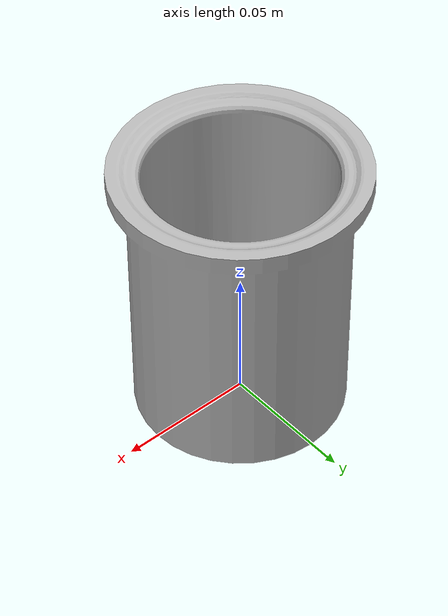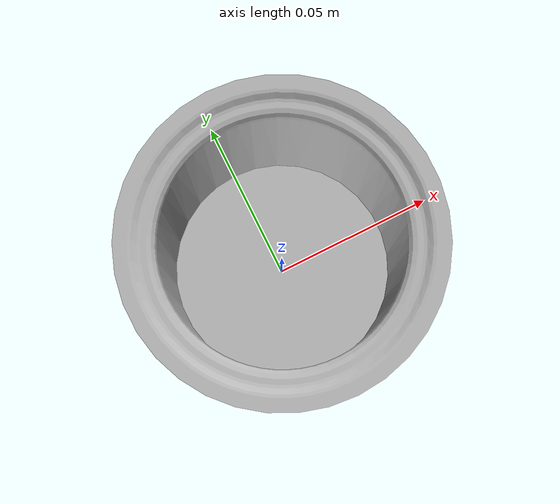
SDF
<sdf version='1.7'>
  <model name='coffee_cup_with_rim_assy'>
    <link name='base_link'>
      <inertial>
        <pose>0 0.047684 -0 0 -0 0</pose>
        <mass>0.141211</mass>
        <inertia>
          <ixx>0.000242956</ixx>
          <ixy>-7.4989e-36</ixy>
          <ixz>8.93705e-37</ixz>
          <iyy>0.000171462</iyy>
          <iyz>3.69145e-20</iyz>
          <izz>0.000242956</izz>
        </inertia>
      </inertial>
      <collision name='base_link_collision'>
        <pose>0 0 0 0 -0 0</pose>
        <geometry>
          <mesh>
            <scale>1 1 1</scale>
            <uri>model://coffee_cup_with_rim_assy/meshes/base_link.STL</uri>
          </mesh>
        </geometry>
      </collision>
      <visual name='base_link_visual'>
        <pose>0 0 0 0 -0 0</pose>
        <geometry>
          <mesh>
            <scale>1 1 1</scale>
            <uri>model://coffee_cup_with_rim_assy/meshes/base_link.STL</uri>
          </mesh>
        </geometry>
      </visual>
    </link>
  </model>
</sdf>
